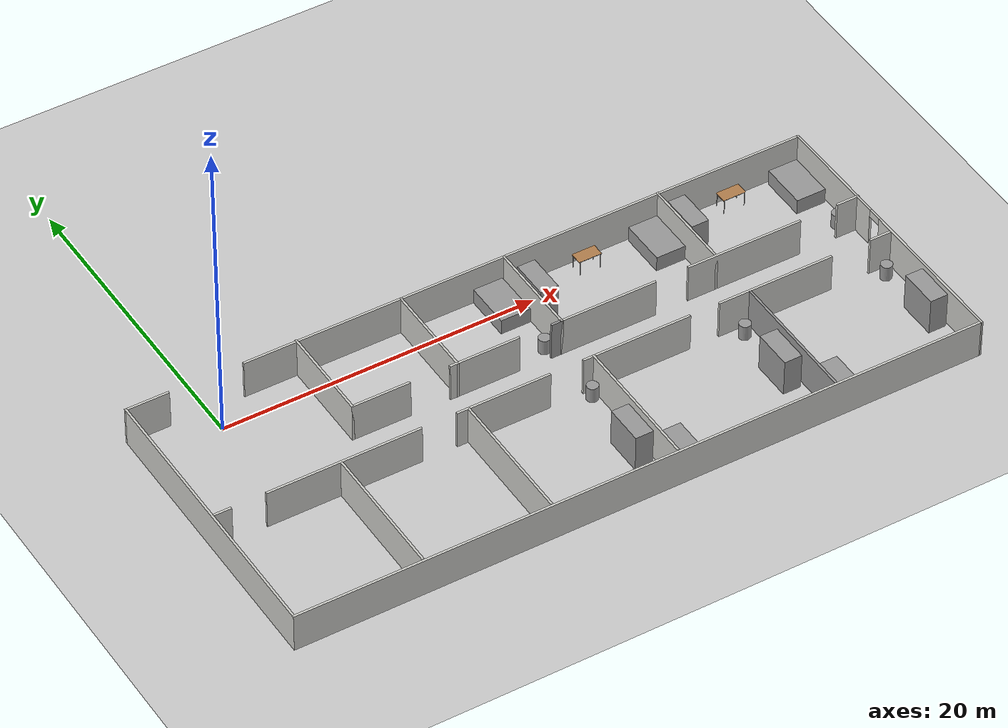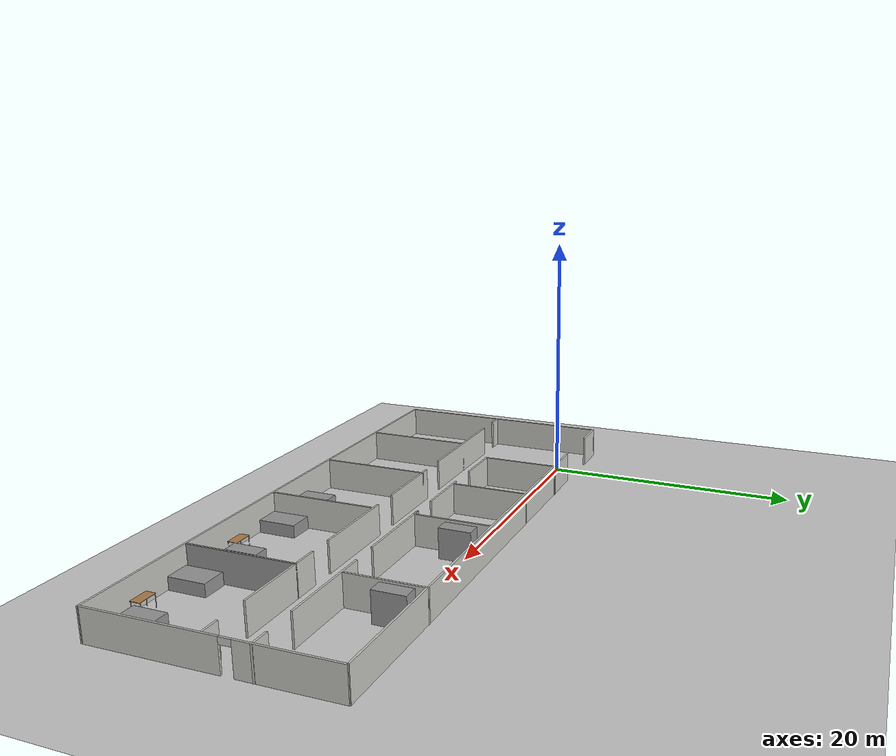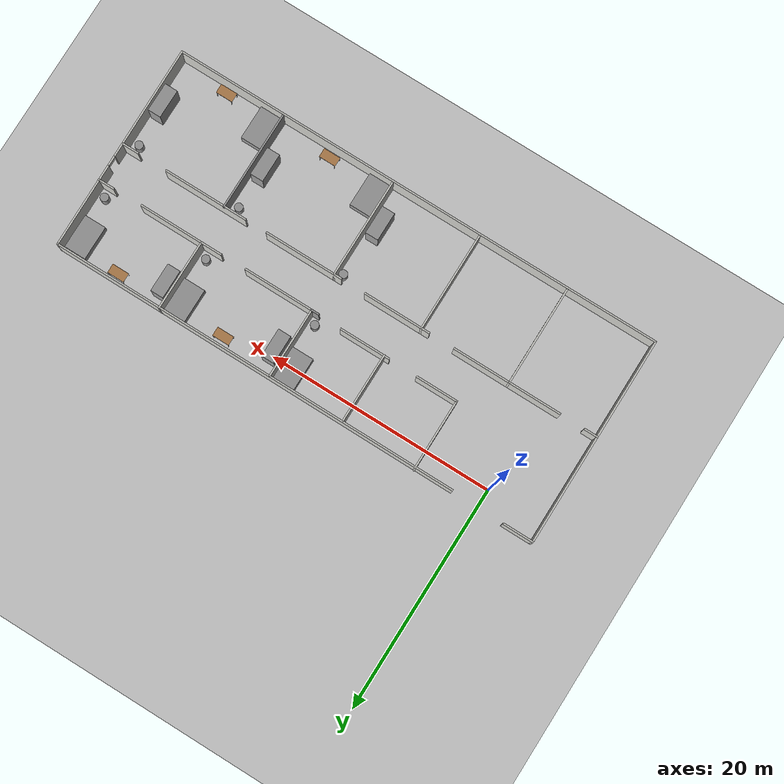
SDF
<sdf version="1.6">
 <world name="default">
  <model name="ground_plane">
   <static>1</static>
   <link name="link">
    <collision name="collision">
     <geometry><plane><normal>0 0 1</normal><size>100 100</size></plane></geometry>
     <surface><friction><ode><mu>100</mu><mu2>50</mu2></ode></friction></surface>
    </collision>
    <visual name="visual">
     <cast_shadows>0</cast_shadows>
     <geometry><plane><normal>0 0 1</normal><size>100 100</size></plane></geometry>
     <material>
      <script><uri>file://media/materials/scripts/gazebo.material</uri><name>Gazebo/Grey</name></script>
     </material>
    </visual>
   </link>
  </model>
  <model name="hospital_base">
   <pose>16.985 -7.39599 0 0 -0 0</pose>
   <link name="Wall_0">
    <collision name="Wall_0_Collision">
     <geometry><box><size>2.75 0.15 2.5</size></box></geometry>
     <pose>0 0 1.25 0 -0 0</pose>
    </collision>
    <visual name="Wall_0_Visual">
     <pose>0 0 1.25 0 -0 0</pose>
     <geometry><box><size>2.75 0.15 2.5</size></box></geometry>
     <material>
      <script><uri>file://media/materials/scripts/gazebo.material</uri><name>Gazebo/CeilingTiled</name></script>
      <ambient>1 1 1 1</ambient>
     </material>
     <meta><layer>0</layer></meta>
    </visual>
    <pose>-20.6253 9.1753 0 0 -0 0</pose>
   </link>
   <link name="Wall_10">
    <collision name="Wall_10_Collision">
     <geometry><box><size>3.75 0.15 2.5</size></box></geometry>
     <pose>0 0 1.25 0 -0 0</pose>
    </collision>
    <visual name="Wall_10_Visual">
     <pose>0 0 1.25 0 -0 0</pose>
     <geometry><box><size>3.75 0.15 2.5</size></box></geometry>
     <material>
      <script><uri>file://media/materials/scripts/gazebo.material</uri><name>Gazebo/CeilingTiled</name></script>
      <ambient>1 1 1 1</ambient>
     </material>
     <meta><layer>0</layer></meta>
    </visual>
    <pose>-9.4395 3.0224 0 0 -0 0</pose>
   </link>
   <link name="Wall_12">
    <collision name="Wall_12_Collision">
     <geometry><box><size>4.5 0.15 2.5</size></box></geometry>
     <pose>0 0 1.25 0 -0 0</pose>
    </collision>
    <visual name="Wall_12_Visual">
     <pose>0 0 1.25 0 -0 0</pose>
     <geometry><box><size>4.5 0.15 2.5</size></box></geometry>
     <material>
      <script><uri>file://media/materials/scripts/gazebo.material</uri><name>Gazebo/CeilingTiled</name></script>
      <ambient>1 1 1 1</ambient>
     </material>
     <meta><layer>0</layer></meta>
    </visual>
    <pose>-2.8223 2.986 0 0 -0 0</pose>
   </link>
   <link name="Wall_14">
    <collision name="Wall_14_Collision">
     <geometry><box><size>6.25 0.15 2.5</size></box></geometry>
     <pose>0 0 1.25 0 -0 0</pose>
    </collision>
    <visual name="Wall_14_Visual">
     <pose>0 0 1.25 0 -0 0</pose>
     <geometry><box><size>6.25 0.15 2.5</size></box></geometry>
     <material>
      <script><uri>file://media/materials/scripts/gazebo.material</uri><name>Gazebo/CeilingTiled</name></script>
      <ambient>1 1 1 1</ambient>
     </material>
     <meta><layer>0</layer></meta>
    </visual>
    <pose>-4.5741 6.0195 0 0 -0 -1.5708</pose>
   </link>
   <link name="Wall_16">
    <collision name="Wall_16_Collision">
     <geometry><box><size>0.75 0.15 2.5</size></box></geometry>
     <pose>0 0 1.25 0 -0 0</pose>
    </collision>
    <visual name="Wall_16_Visual">
     <pose>0 0 1.25 0 -0 0</pose>
     <geometry><box><size>0.75 0.15 2.5</size></box></geometry>
     <material>
      <script><uri>file://media/materials/scripts/gazebo.material</uri><name>Gazebo/Grey</name></script>
      <ambient>1 1 1 1</ambient>
     </material>
     <meta><layer>0</layer></meta>
    </visual>
    <pose>1.8094 2.9331 0 0 -0 0</pose>
   </link>
   <link name="Wall_17">
    <collision name="Wall_17_Collision">
     <geometry><box><size>6.25 0.15 2.5</size></box></geometry>
     <pose>0 0 1.25 0 -0 0</pose>
    </collision>
    <visual name="Wall_17_Visual">
     <pose>0 0 1.25 0 -0 0</pose>
     <geometry><box><size>6.25 0.15 2.5</size></box></geometry>
     <material>
      <script><uri>file://media/materials/scripts/gazebo.material</uri><name>Gazebo/CeilingTiled</name></script>
      <ambient>1 1 1 1</ambient>
     </material>
     <meta><layer>0</layer></meta>
    </visual>
    <pose>2.1094 5.9831 0 0 -0 1.5708</pose>
   </link>
   <link name="Wall_19">
    <collision name="Wall_19_Collision">
     <geometry><box><size>6.25 0.15 2.5</size></box></geometry>
     <pose>0 0 1.25 0 -0 0</pose>
    </collision>
    <visual name="Wall_19_Visual">
     <pose>0 0 1.25 0 -0 0</pose>
     <geometry><box><size>6.25 0.15 2.5</size></box></geometry>
     <material>
      <script><uri>file://media/materials/scripts/gazebo.material</uri><name>Gazebo/CeilingTiled</name></script>
      <ambient>1 1 1 1</ambient>
     </material>
     <meta><layer>0</layer></meta>
    </visual>
    <pose>5.1594 2.9331 0 0 -0 0</pose>
   </link>
   <link name="Wall_2">
    <collision name="Wall_2_Collision">
     <geometry><box><size>36.5 0.15 2.5</size></box></geometry>
     <pose>0 0 1.25 0 -0 0</pose>
    </collision>
    <visual name="Wall_2_Visual">
     <pose>0 0 1.25 0 -0 0</pose>
     <geometry><box><size>36.5 0.15 2.5</size></box></geometry>
     <material>
      <script><uri>file://media/materials/scripts/gazebo.material</uri><name>Gazebo/CeilingTiled</name></script>
      <ambient>1 1 1 1</ambient>
     </material>
     <meta><layer>0</layer></meta>
    </visual>
    <pose>3.6028 9.0695 0 0 -0 0</pose>
   </link>
   <link name="Wall_23">
    <collision name="Wall_23_Collision">
     <geometry><box><size>7.5 0.15 2.5</size></box></geometry>
     <pose>0 0 1.25 0 -0 0</pose>
    </collision>
    <visual name="Wall_23_Visual">
     <pose>0 0 1.25 0 -0 0</pose>
     <geometry><box><size>7.5 0.15 2.5</size></box></geometry>
     <material>
      <script><uri>file://media/materials/scripts/gazebo.material</uri><name>Gazebo/CeilingTiled</name></script>
      <ambient>1 1 1 1</ambient>
     </material>
     <meta><layer>0</layer></meta>
    </visual>
    <pose>14.1774 2.986 0 0 -0 0</pose>
   </link>
   <link name="Wall_25">
    <collision name="Wall_25_Collision">
     <geometry><box><size>1.5 0.15 2.5</size></box></geometry>
     <pose>0 0 1.25 0 -0 0</pose>
    </collision>
    <visual name="Wall_25_Visual">
     <pose>0 0 1.25 0 -0 0</pose>
     <geometry><box><size>1.5 0.15 2.5</size></box></geometry>
     <material>
      <script><uri>file://media/materials/scripts/gazebo.material</uri><name>Gazebo/CeilingTiled</name></script>
      <ambient>1 1 1 1</ambient>
     </material>
     <meta><layer>0</layer></meta>
    </visual>
    <pose>21.1755 3.0389 0 0 -0 0</pose>
   </link>
   <link name="Wall_27">
    <collision name="Wall_27_Collision">
     <geometry><box><size>6.25 0.15 2.5</size></box></geometry>
     <pose>0 0 1.25 0 -0 0</pose>
    </collision>
    <visual name="Wall_27_Visual">
     <pose>0 0 1.25 0 -0 0</pose>
     <geometry><box><size>6.25 0.15 2.5</size></box></geometry>
     <material>
      <script><uri>file://media/materials/scripts/gazebo.material</uri><name>Gazebo/CeilingTiled</name></script>
      <ambient>1 1 1 1</ambient>
     </material>
     <meta><layer>0</layer></meta>
    </visual>
    <pose>12.301 6.036 0 0 -0 1.5708</pose>
   </link>
   <link name="Wall_29">
    <collision name="Wall_29_Collision">
     <geometry><box><size>1.25 0.15 2.5</size></box></geometry>
     <pose>0 0 1.25 0 -0 0</pose>
    </collision>
    <visual name="Wall_29_Visual">
     <pose>0 0 1.25 0 -0 0</pose>
     <geometry><box><size>1.25 0.15 2.5</size></box></geometry>
     <material>
      <script><uri>file://media/materials/scripts/gazebo.material</uri><name>Gazebo/CeilingTiled</name></script>
      <ambient>1 1 1 1</ambient>
     </material>
     <meta><layer>0</layer></meta>
    </visual>
    <pose>-21.3753 -0.3996 0 0 -0 0</pose>
   </link>
   <link name="Wall_31">
    <collision name="Wall_31_Collision">
     <geometry><box><size>9.75 0.15 2.5</size></box></geometry>
     <pose>0 0 1.25 0 -0 0</pose>
    </collision>
    <visual name="Wall_31_Visual">
     <pose>0 0 1.25 0 -0 0</pose>
     <geometry><box><size>9.75 0.15 2.5</size></box></geometry>
     <material>
      <script><uri>file://media/materials/scripts/gazebo.material</uri><name>Gazebo/CeilingTiled</name></script>
      <ambient>1 1 1 1</ambient>
     </material>
     <meta><layer>0</layer></meta>
    </visual>
    <pose>-13.7397 -0.3996 0 0 -0 0</pose>
   </link>
   <link name="Wall_33">
    <collision name="Wall_33_Collision">
     <geometry><box><size>6 0.15 2.5</size></box></geometry>
     <pose>0 0 1.25 0 -0 0</pose>
    </collision>
    <visual name="Wall_33_Visual">
     <pose>0 0 1.25 0 -0 0</pose>
     <geometry><box><size>6 0.15 2.5</size></box></geometry>
     <material>
      <script><uri>file://media/materials/scripts/gazebo.material</uri><name>Gazebo/CeilingTiled</name></script>
      <ambient>1 1 1 1</ambient>
     </material>
     <meta><layer>0</layer></meta>
    </visual>
    <pose>-3.6593 -0.3996 0 0 -0 0</pose>
   </link>
   <link name="Wall_35">
    <collision name="Wall_35_Collision">
     <geometry><box><size>7 0.15 2.5</size></box></geometry>
     <pose>0 0 1.25 0 -0 0</pose>
    </collision>
    <visual name="Wall_35_Visual">
     <pose>0 0 1.25 0 -0 0</pose>
     <geometry><box><size>7 0.15 2.5</size></box></geometry>
     <material>
      <script><uri>file://media/materials/scripts/gazebo.material</uri><name>Gazebo/CeilingTiled</name></script>
      <ambient>1 1 1 1</ambient>
     </material>
     <meta><layer>0</layer></meta>
    </visual>
    <pose>4.9344 -0.3996 0 0 -0 0</pose>
   </link>
   <link name="Wall_37">
    <collision name="Wall_37_Collision">
     <geometry><box><size>7.5 0.15 2.5</size></box></geometry>
     <pose>0 0 1.25 0 -0 0</pose>
    </collision>
    <visual name="Wall_37_Visual">
     <pose>0 0 1.25 0 -0 0</pose>
     <geometry><box><size>7.5 0.15 2.5</size></box></geometry>
     <material>
      <script><uri>file://media/materials/scripts/gazebo.material</uri><name>Gazebo/CeilingTiled</name></script>
      <ambient>1 1 1 1</ambient>
     </material>
     <meta><layer>0</layer></meta>
    </visual>
    <pose>14.0716 -0.3996 0 0 -0 0</pose>
   </link>
   <link name="Wall_39">
    <collision name="Wall_39_Collision">
     <geometry><box><size>1.5 0.15 2.5</size></box></geometry>
     <pose>0 0 1.25 0 -0 0</pose>
    </collision>
    <visual name="Wall_39_Visual">
     <pose>0 0 1.25 0 -0 0</pose>
     <geometry><box><size>1.5 0.15 2.5</size></box></geometry>
     <material>
      <script><uri>file://media/materials/scripts/gazebo.material</uri><name>Gazebo/CeilingTiled</name></script>
      <ambient>1 1 1 1</ambient>
     </material>
     <meta><layer>0</layer></meta>
    </visual>
    <pose>21.1226 -0.3996 0 0 -0 0</pose>
   </link>
   <link name="Wall_41">
    <collision name="Wall_41_Collision">
     <geometry><box><size>8.75 0.15 2.5</size></box></geometry>
     <pose>0 0 1.25 0 -0 0</pose>
    </collision>
    <visual name="Wall_41_Visual">
     <pose>0 0 1.25 0 -0 0</pose>
     <geometry><box><size>8.75 0.15 2.5</size></box></geometry>
     <material>
      <script><uri>file://media/materials/scripts/gazebo.material</uri><name>Gazebo/Grey</name></script>
      <ambient>1 1 1 1</ambient>
     </material>
     <meta><layer>0</layer></meta>
    </visual>
    <pose>12.3539 -4.6996 0 0 -0 -1.5708</pose>
   </link>
   <link name="Wall_43">
    <collision name="Wall_43_Collision">
     <geometry><box><size>8.75 0.15 2.5</size></box></geometry>
     <pose>0 0 1.25 0 -0 0</pose>
    </collision>
    <visual name="Wall_43_Visual">
     <pose>0 0 1.25 0 -0 0</pose>
     <geometry><box><size>8.75 0.15 2.5</size></box></geometry>
     <material>
      <script><uri>file://media/materials/scripts/gazebo.material</uri><name>Gazebo/CeilingTiled</name></script>
      <ambient>1 1 1 1</ambient>
     </material>
     <meta><layer>0</layer></meta>
    </visual>
    <pose>2.1442 -4.6996 0 0 -0 -1.5708</pose>
   </link>
   <link name="Wall_45">
    <collision name="Wall_45_Collision">
     <geometry><box><size>8.75 0.15 2.5</size></box></geometry>
     <pose>0 0 1.25 0 -0 0</pose>
    </collision>
    <visual name="Wall_45_Visual">
     <pose>0 0 1.25 0 -0 0</pose>
     <geometry><box><size>8.75 0.15 2.5</size></box></geometry>
     <material>
      <script><uri>file://media/materials/scripts/gazebo.material</uri><name>Gazebo/CeilingTiled</name></script>
      <ambient>1 1 1 1</ambient>
     </material>
     <meta><layer>0</layer></meta>
    </visual>
    <pose>-5.8966 -4.6996 0 0 -0 -1.5708</pose>
   </link>
   <link name="Wall_47">
    <collision name="Wall_47_Collision">
     <geometry><box><size>8.75 0.15 2.5</size></box></geometry>
     <pose>0 0 1.25 0 -0 0</pose>
    </collision>
    <visual name="Wall_47_Visual">
     <pose>0 0 1.25 0 -0 0</pose>
     <geometry><box><size>8.75 0.15 2.5</size></box></geometry>
     <material>
      <script><uri>file://media/materials/scripts/gazebo.material</uri><name>Gazebo/CeilingTiled</name></script>
      <ambient>1 1 1 1</ambient>
     </material>
     <meta><layer>0</layer></meta>
    </visual>
    <pose>-13.9374 -4.6996 0 0 -0 -1.5708</pose>
   </link>
   <link name="Wall_5">
    <collision name="Wall_5_Collision">
     <geometry><box><size>18.5 0.15 2.5</size></box></geometry>
     <pose>0 0 1.25 0 -0 0</pose>
    </collision>
    <visual name="Wall_5_Visual">
     <pose>0 0 1.25 0 -0 0</pose>
     <geometry><box><size>18.5 0.15 2.5</size></box></geometry>
     <material>
      <script><uri>file://media/materials/scripts/gazebo.material</uri><name>Gazebo/CeilingTiled</name></script>
      <ambient>1 1 1 1</ambient>
     </material>
     <meta><layer>0</layer></meta>
    </visual>
    <pose>-21.9253 0.0003 0 0 -0 -1.5708</pose>
   </link>
   <link name="Wall_6">
    <collision name="Wall_6_Collision">
     <geometry><box><size>44 0.15 2.5</size></box></geometry>
     <pose>0 0 1.25 0 -0 0</pose>
    </collision>
    <visual name="Wall_6_Visual">
     <pose>0 0 1.25 0 -0 0</pose>
     <geometry><box><size>44 0.15 2.5</size></box></geometry>
     <material>
      <script><uri>file://media/materials/scripts/gazebo.material</uri><name>Gazebo/CeilingTiled</name></script>
      <ambient>1 1 1 1</ambient>
     </material>
     <meta><layer>0</layer></meta>
    </visual>
    <pose>-0.0003 -9.1747 0 0 -0 0</pose>
   </link>
   <link name="Wall_7">
    <pose>21.8513 -0.0526 0 0 -0 1.57885</pose>
    <visual name="Wall_7_Visual_0">
     <pose>-4.17652 0 1.25 0 -0 0</pose>
     <geometry><box><size>10.0418 0.15 2.5</size></box></geometry>
     <material>
      <script><uri>file://media/materials/scripts/gazebo.material</uri><name>Gazebo/CeilingTiled</name></script>
      <ambient>1 1 1 1</ambient>
     </material>
     <meta><layer>0</layer></meta>
    </visual>
    <collision name="Wall_7_Collision_0">
     <geometry><box><size>10.0418 0.15 2.5</size></box></geometry>
     <pose>-4.17652 0 1.25 0 -0 0</pose>
    </collision>
    <visual name="Wall_7_Visual_1">
     <pose>5.47088 0 1.25 0 -0 0</pose>
     <geometry><box><size>7.45303 0.15 2.5</size></box></geometry>
     <material>
      <script><uri>file://media/materials/scripts/gazebo.material</uri><name>Gazebo/CeilingTiled</name></script>
      <ambient>1 1 1 1</ambient>
     </material>
     <meta><layer>0</layer></meta>
    </visual>
    <collision name="Wall_7_Collision_1">
     <geometry><box><size>7.45303 0.15 2.5</size></box></geometry>
     <pose>5.47088 0 1.25 0 -0 0</pose>
    </collision>
    <visual name="Wall_7_Visual_2">
     <pose>1.29436 0 2.25 0 -0 0</pose>
     <geometry><box><size>0.9 0.15 0.5</size></box></geometry>
     <material>
      <script><uri>file://media/materials/scripts/gazebo.material</uri><name>Gazebo/CeilingTiled</name></script>
      <ambient>1 1 1 1</ambient>
     </material>
     <meta><layer>0</layer></meta>
    </visual>
    <collision name="Wall_7_Collision_2">
     <geometry><box><size>0.9 0.15 0.5</size></box></geometry>
     <pose>1.29436 0 2.25 0 -0 0</pose>
    </collision>
   </link>
   <link name="Wall_9">
    <collision name="Wall_9_Collision">
     <geometry><box><size>6.25 0.15 2.5</size></box></geometry>
     <pose>0 0 1.25 0 -0 0</pose>
    </collision>
    <visual name="Wall_9_Visual">
     <pose>0 0 1.25 0 -0 0</pose>
     <geometry><box><size>6.25 0.15 2.5</size></box></geometry>
     <material>
      <script><uri>file://media/materials/scripts/gazebo.material</uri><name>Gazebo/CeilingTiled</name></script>
      <ambient>1 1 1 1</ambient>
     </material>
     <meta><layer>0</layer></meta>
    </visual>
    <pose>-11.2395 6.0724 0 0 -0 -1.5708</pose>
   </link>
   <static>1</static>
  </model>
  <model name="unit_box_1_clone_1">
   <pose>20.2632 -14.9393 0.499995 0 -5e-06 4.8e-05</pose>
   <link name="link">
    <inertial>
     <mass>1</mass>
     <inertia>
      <ixx>0.166667</ixx>
      <ixy>0</ixy>
      <ixz>0</ixz>
      <iyy>0.166667</iyy>
      <iyz>0</iyz>
      <izz>0.166667</izz>
     </inertia>
    </inertial>
    <collision name="collision"><geometry><box><size>1.90543 2.99439 1</size></box></geometry></collision>
    <visual name="visual">
     <geometry><box><size>1.90543 2.99439 1</size></box></geometry>
     <material>
      <script><name>Gazebo/Grey</name><uri>file://media/materials/scripts/gazebo.material</uri></script>
     </material>
    </visual>
   </link>
  </model>
  <model name="unit_box_1_clone_2">
   <pose>30.517 -14.9512 0.499995 0 -5e-06 4.9e-05</pose>
   <link name="link">
    <inertial>
     <mass>1</mass>
     <inertia>
      <ixx>0.166667</ixx>
      <ixy>0</ixy>
      <ixz>0</ixz>
      <iyy>0.166667</iyy>
      <iyz>0</iyz>
      <izz>0.166667</izz>
     </inertia>
    </inertial>
    <collision name="collision"><geometry><box><size>1.90543 2.99439 1</size></box></geometry></collision>
    <visual name="visual">
     <geometry><box><size>1.90543 2.99439 1</size></box></geometry>
     <material>
      <script><name>Gazebo/Grey</name><uri>file://media/materials/scripts/gazebo.material</uri></script>
     </material>
    </visual>
   </link>
  </model>
  <model name="unit_box_1_clone_3">
   <pose>37.5966 -0.067872 0.499995 0 5e-06 5.5e-05</pose>
   <link name="link">
    <inertial>
     <mass>1</mass>
     <inertia>
      <ixx>0.166667</ixx>
      <ixy>0</ixy>
      <ixz>0</ixz>
      <iyy>0.166667</iyy>
      <iyz>0</iyz>
      <izz>0.166667</izz>
     </inertia>
    </inertial>
    <collision name="collision"><geometry><box><size>1.90543 2.99439 1</size></box></geometry></collision>
    <visual name="visual">
     <geometry><box><size>1.90543 2.99439 1</size></box></geometry>
     <material>
      <script><name>Gazebo/Grey</name><uri>file://media/materials/scripts/gazebo.material</uri></script>
     </material>
    </visual>
   </link>
  </model>
  <model name="unit_box_1_clone_4">
   <pose>28.1968 0.009161 0.499995 0 5e-06 -6.6e-05</pose>
   <link name="link">
    <inertial>
     <mass>1</mass>
     <inertia>
      <ixx>0.166667</ixx>
      <ixy>0</ixy>
      <ixz>0</ixz>
      <iyy>0.166667</iyy>
      <iyz>0</iyz>
      <izz>0.166667</izz>
     </inertia>
    </inertial>
    <collision name="collision"><geometry><box><size>1.90543 2.99439 1</size></box></geometry></collision>
    <visual name="visual">
     <geometry><box><size>1.90543 2.99439 1</size></box></geometry>
     <material>
      <script><name>Gazebo/Grey</name><uri>file://media/materials/scripts/gazebo.material</uri></script>
     </material>
    </visual>
   </link>
  </model>
  <model name="unit_box_1_clone_6">
   <pose>18.0101 0.101182 0.499995 0 -5e-06 0.000101</pose>
   <link name="link">
    <inertial>
     <mass>1</mass>
     <inertia>
      <ixx>0.166667</ixx>
      <ixy>0</ixy>
      <ixz>0</ixz>
      <iyy>0.166667</iyy>
      <iyz>0</iyz>
      <izz>0.166667</izz>
     </inertia>
    </inertial>
    <collision name="collision"><geometry><box><size>1.90543 2.99439 1</size></box></geometry></collision>
    <visual name="visual">
     <geometry><box><size>1.90543 2.99439 1</size></box></geometry>
     <material>
      <script><name>Gazebo/Grey</name><uri>file://media/materials/scripts/gazebo.material</uri></script>
     </material>
    </visual>
   </link>
  </model>
  <model name="unit_cylinder_clone_0">
   <pose>18.676 -8.4168 0.499997 0 -0 0</pose>
   <link name="link">
    <inertial>
     <mass>1</mass>
     <inertia><ixx>0.145833</ixx><ixy>0</ixy><ixz>0</ixz><iyy>0.145833</iyy><iyz>0</iyz><izz>0.125</izz></inertia>
    </inertial>
    <collision name="collision">
     <geometry><cylinder><radius>0.361483</radius><length>1</length></cylinder></geometry>
    </collision>
    <visual name="visual">
     <geometry><cylinder><radius>0.361483</radius><length>1</length></cylinder></geometry>
     <material>
      <script><name>Gazebo/Grey</name><uri>file://media/materials/scripts/gazebo.material</uri></script>
     </material>
    </visual>
   </link>
  </model>
  <model name="unit_cylinder_clone_1">
   <pose>28.5817 -8.56852 0.499993 -0 -0 -0</pose>
   <link name="link">
    <inertial>
     <mass>1</mass>
     <inertia><ixx>0.145833</ixx><ixy>0</ixy><ixz>0</ixz><iyy>0.145833</iyy><iyz>0</iyz><izz>0.125</izz></inertia>
    </inertial>
    <collision name="collision">
     <geometry><cylinder><radius>0.361483</radius><length>1</length></cylinder></geometry>
    </collision>
    <visual name="visual">
     <geometry><cylinder><radius>0.361483</radius><length>1</length></cylinder></geometry>
     <material>
      <script><name>Gazebo/Grey</name><uri>file://media/materials/scripts/gazebo.material</uri></script>
     </material>
    </visual>
   </link>
  </model>
  <model name="unit_cylinder_clone_2">
   <pose>38.0307 -8.60052 0.499997 0 -0 0</pose>
   <link name="link">
    <inertial>
     <mass>1</mass>
     <inertia><ixx>0.145833</ixx><ixy>0</ixy><ixz>0</ixz><iyy>0.145833</iyy><iyz>0</iyz><izz>0.125</izz></inertia>
    </inertial>
    <collision name="collision">
     <geometry><cylinder><radius>0.361483</radius><length>1</length></cylinder></geometry>
    </collision>
    <visual name="visual">
     <geometry><cylinder><radius>0.361483</radius><length>1</length></cylinder></geometry>
     <material>
      <script><name>Gazebo/Grey</name><uri>file://media/materials/scripts/gazebo.material</uri></script>
     </material>
    </visual>
   </link>
  </model>
  <model name="unit_box_2_clone_0">
   <pose>18.2486 -13.1791 1.19041 0 -0 9.3e-05</pose>
   <link name="link">
    <inertial>
     <mass>1</mass>
     <inertia>
      <ixx>0.166667</ixx>
      <ixy>0</ixy>
      <ixz>0</ixz>
      <iyy>0.166667</iyy>
      <iyz>0</iyz>
      <izz>0.166667</izz>
     </inertia>
    </inertial>
    <collision name="collision"><geometry><box><size>1.13758 2.51147 2.38082</size></box></geometry></collision>
    <visual name="visual">
     <geometry><box><size>1.13758 2.51147 2.38082</size></box></geometry>
     <material>
      <script><name>Gazebo/Grey</name><uri>file://media/materials/scripts/gazebo.material</uri></script>
     </material>
    </visual>
   </link>
  </model>
  <model name="unit_box_2_clone_1">
   <pose>28.4321 -12.3596 1.19041 0 -0 9.3e-05</pose>
   <link name="link">
    <inertial>
     <mass>1</mass>
     <inertia>
      <ixx>0.166667</ixx>
      <ixy>0</ixy>
      <ixz>0</ixz>
      <iyy>0.166667</iyy>
      <iyz>0</iyz>
      <izz>0.166667</izz>
     </inertia>
    </inertial>
    <collision name="collision"><geometry><box><size>1.13758 2.51147 2.38082</size></box></geometry></collision>
    <visual name="visual">
     <geometry><box><size>1.13758 2.51147 2.38082</size></box></geometry>
     <material>
      <script><name>Gazebo/Grey</name><uri>file://media/materials/scripts/gazebo.material</uri></script>
     </material>
    </visual>
   </link>
  </model>
  <model name="unit_box_2_clone_2">
   <pose>38.0757 -12.4293 1.19041 0 -0 9.3e-05</pose>
   <link name="link">
    <inertial>
     <mass>1</mass>
     <inertia>
      <ixx>0.166667</ixx>
      <ixy>0</ixy>
      <ixz>0</ixz>
      <iyy>0.166667</iyy>
      <iyz>0</iyz>
      <izz>0.166667</izz>
     </inertia>
    </inertial>
    <collision name="collision"><geometry><box><size>1.13758 2.51147 2.38082</size></box></geometry></collision>
    <visual name="visual">
     <geometry><box><size>1.13758 2.51147 2.38082</size></box></geometry>
     <material>
      <script><name>Gazebo/Grey</name><uri>file://media/materials/scripts/gazebo.material</uri></script>
     </material>
    </visual>
   </link>
  </model>
  <model name="unit_box_2_clone_3">
   <pose>30.0365 -0.348097 1.19041 0 -0 9.3e-05</pose>
   <link name="link">
    <inertial>
     <mass>1</mass>
     <inertia>
      <ixx>0.166667</ixx>
      <ixy>0</ixy>
      <ixz>0</ixz>
      <iyy>0.166667</iyy>
      <iyz>0</iyz>
      <izz>0.166667</izz>
     </inertia>
    </inertial>
    <collision name="collision"><geometry><box><size>1.13758 2.51147 2.38082</size></box></geometry></collision>
    <visual name="visual">
     <geometry><box><size>1.13758 2.51147 2.38082</size></box></geometry>
     <material>
      <script><name>Gazebo/Grey</name><uri>file://media/materials/scripts/gazebo.material</uri></script>
     </material>
    </visual>
   </link>
  </model>
  <model name="unit_box_2_clone_4">
   <pose>19.9326 -0.590282 1.19041 0 -0 9.3e-05</pose>
   <link name="link">
    <inertial>
     <mass>1</mass>
     <inertia>
      <ixx>0.166667</ixx>
      <ixy>0</ixy>
      <ixz>0</ixz>
      <iyy>0.166667</iyy>
      <iyz>0</iyz>
      <izz>0.166667</izz>
     </inertia>
    </inertial>
    <collision name="collision"><geometry><box><size>1.13758 2.51147 2.38082</size></box></geometry></collision>
    <visual name="visual">
     <geometry><box><size>1.13758 2.51147 2.38082</size></box></geometry>
     <material>
      <script><name>Gazebo/Grey</name><uri>file://media/materials/scripts/gazebo.material</uri></script>
     </material>
    </visual>
   </link>
  </model>
  <model name="table_clone_1">
   <static>1</static>
   <link name="link">
    <collision name="surface">
     <pose>0 0 1 0 -0 0</pose>
     <geometry><box><size>1.5 0.8 0.03</size></box></geometry>
     <surface><friction><ode><mu>0.6</mu><mu2>0.6</mu2></ode></friction></surface>
    </collision>
    <visual name="visual1">
     <pose>0 0 1 0 -0 0</pose>
     <geometry><box><size>1.5 0.8 0.03</size></box></geometry>
     <material>
      <script><uri>file://media/materials/scripts/gazebo.material</uri><name>Gazebo/Wood</name></script>
     </material>
    </visual>
    <collision name="front_left_leg">
     <pose>0.68 0.38 0.5 0 -0 0</pose>
     <geometry><cylinder><radius>0.02</radius><length>1</length></cylinder></geometry>
    </collision>
    <visual name="front_left_leg">
     <pose>0.68 0.38 0.5 0 -0 0</pose>
     <geometry><cylinder><radius>0.02</radius><length>1</length></cylinder></geometry>
     <material>
      <script><uri>file://media/materials/scripts/gazebo.material</uri><name>Gazebo/Grey</name></script>
     </material>
    </visual>
    <collision name="front_right_leg">
     <pose>0.68 -0.38 0.5 0 -0 0</pose>
     <geometry><cylinder><radius>0.02</radius><length>1</length></cylinder></geometry>
    </collision>
    <visual name="front_right_leg">
     <pose>0.68 -0.38 0.5 0 -0 0</pose>
     <geometry><cylinder><radius>0.02</radius><length>1</length></cylinder></geometry>
     <material>
      <script><uri>file://media/materials/scripts/gazebo.material</uri><name>Gazebo/Grey</name></script>
     </material>
    </visual>
    <collision name="back_right_leg">
     <pose>-0.68 -0.38 0.5 0 -0 0</pose>
     <geometry><cylinder><radius>0.02</radius><length>1</length></cylinder></geometry>
    </collision>
    <visual name="back_right_leg">
     <pose>-0.68 -0.38 0.5 0 -0 0</pose>
     <geometry><cylinder><radius>0.02</radius><length>1</length></cylinder></geometry>
     <material>
      <script><uri>file://media/materials/scripts/gazebo.material</uri><name>Gazebo/Grey</name></script>
     </material>
    </visual>
    <collision name="back_left_leg">
     <pose>-0.68 0.38 0.5 0 -0 0</pose>
     <geometry><cylinder><radius>0.02</radius><length>1</length></cylinder></geometry>
    </collision>
    <visual name="back_left_leg">
     <pose>-0.68 0.38 0.5 0 -0 0</pose>
     <geometry><cylinder><radius>0.02</radius><length>1</length></cylinder></geometry>
     <material>
      <script><uri>file://media/materials/scripts/gazebo.material</uri><name>Gazebo/Grey</name></script>
     </material>
    </visual>
   </link>
   <pose>24.614 -15.8409 0 0 -0 0</pose>
  </model>
  <model name="table_clone_2">
   <static>1</static>
   <link name="link">
    <collision name="surface">
     <pose>0 0 1 0 -0 0</pose>
     <geometry><box><size>1.5 0.8 0.03</size></box></geometry>
     <surface><friction><ode><mu>0.6</mu><mu2>0.6</mu2></ode></friction></surface>
    </collision>
    <visual name="visual1">
     <pose>0 0 1 0 -0 0</pose>
     <geometry><box><size>1.5 0.8 0.03</size></box></geometry>
     <material>
      <script><uri>file://media/materials/scripts/gazebo.material</uri><name>Gazebo/Wood</name></script>
     </material>
    </visual>
    <collision name="front_left_leg">
     <pose>0.68 0.38 0.5 0 -0 0</pose>
     <geometry><cylinder><radius>0.02</radius><length>1</length></cylinder></geometry>
    </collision>
    <visual name="front_left_leg">
     <pose>0.68 0.38 0.5 0 -0 0</pose>
     <geometry><cylinder><radius>0.02</radius><length>1</length></cylinder></geometry>
     <material>
      <script><uri>file://media/materials/scripts/gazebo.material</uri><name>Gazebo/Grey</name></script>
     </material>
    </visual>
    <collision name="front_right_leg">
     <pose>0.68 -0.38 0.5 0 -0 0</pose>
     <geometry><cylinder><radius>0.02</radius><length>1</length></cylinder></geometry>
    </collision>
    <visual name="front_right_leg">
     <pose>0.68 -0.38 0.5 0 -0 0</pose>
     <geometry><cylinder><radius>0.02</radius><length>1</length></cylinder></geometry>
     <material>
      <script><uri>file://media/materials/scripts/gazebo.material</uri><name>Gazebo/Grey</name></script>
     </material>
    </visual>
    <collision name="back_right_leg">
     <pose>-0.68 -0.38 0.5 0 -0 0</pose>
     <geometry><cylinder><radius>0.02</radius><length>1</length></cylinder></geometry>
    </collision>
    <visual name="back_right_leg">
     <pose>-0.68 -0.38 0.5 0 -0 0</pose>
     <geometry><cylinder><radius>0.02</radius><length>1</length></cylinder></geometry>
     <material>
      <script><uri>file://media/materials/scripts/gazebo.material</uri><name>Gazebo/Grey</name></script>
     </material>
    </visual>
    <collision name="back_left_leg">
     <pose>-0.68 0.38 0.5 0 -0 0</pose>
     <geometry><cylinder><radius>0.02</radius><length>1</length></cylinder></geometry>
    </collision>
    <visual name="back_left_leg">
     <pose>-0.68 0.38 0.5 0 -0 0</pose>
     <geometry><cylinder><radius>0.02</radius><length>1</length></cylinder></geometry>
     <material>
      <script><uri>file://media/materials/scripts/gazebo.material</uri><name>Gazebo/Grey</name></script>
     </material>
    </visual>
   </link>
   <pose>34.3997 -15.9077 0 0 -0 0</pose>
  </model>
  <model name="table_clone_3">
   <static>1</static>
   <link name="link">
    <collision name="surface">
     <pose>0 0 1 0 -0 0</pose>
     <geometry><box><size>1.5 0.8 0.03</size></box></geometry>
     <surface><friction><ode><mu>0.6</mu><mu2>0.6</mu2></ode></friction></surface>
    </collision>
    <visual name="visual1">
     <pose>0 0 1 0 -0 0</pose>
     <geometry><box><size>1.5 0.8 0.03</size></box></geometry>
     <material>
      <script><uri>file://media/materials/scripts/gazebo.material</uri><name>Gazebo/Wood</name></script>
     </material>
    </visual>
    <collision name="front_left_leg">
     <pose>0.68 0.38 0.5 0 -0 0</pose>
     <geometry><cylinder><radius>0.02</radius><length>1</length></cylinder></geometry>
    </collision>
    <visual name="front_left_leg">
     <pose>0.68 0.38 0.5 0 -0 0</pose>
     <geometry><cylinder><radius>0.02</radius><length>1</length></cylinder></geometry>
     <material>
      <script><uri>file://media/materials/scripts/gazebo.material</uri><name>Gazebo/Grey</name></script>
     </material>
    </visual>
    <collision name="front_right_leg">
     <pose>0.68 -0.38 0.5 0 -0 0</pose>
     <geometry><cylinder><radius>0.02</radius><length>1</length></cylinder></geometry>
    </collision>
    <visual name="front_right_leg">
     <pose>0.68 -0.38 0.5 0 -0 0</pose>
     <geometry><cylinder><radius>0.02</radius><length>1</length></cylinder></geometry>
     <material>
      <script><uri>file://media/materials/scripts/gazebo.material</uri><name>Gazebo/Grey</name></script>
     </material>
    </visual>
    <collision name="back_right_leg">
     <pose>-0.68 -0.38 0.5 0 -0 0</pose>
     <geometry><cylinder><radius>0.02</radius><length>1</length></cylinder></geometry>
    </collision>
    <visual name="back_right_leg">
     <pose>-0.68 -0.38 0.5 0 -0 0</pose>
     <geometry><cylinder><radius>0.02</radius><length>1</length></cylinder></geometry>
     <material>
      <script><uri>file://media/materials/scripts/gazebo.material</uri><name>Gazebo/Grey</name></script>
     </material>
    </visual>
    <collision name="back_left_leg">
     <pose>-0.68 0.38 0.5 0 -0 0</pose>
     <geometry><cylinder><radius>0.02</radius><length>1</length></cylinder></geometry>
    </collision>
    <visual name="back_left_leg">
     <pose>-0.68 0.38 0.5 0 -0 0</pose>
     <geometry><cylinder><radius>0.02</radius><length>1</length></cylinder></geometry>
     <material>
      <script><uri>file://media/materials/scripts/gazebo.material</uri><name>Gazebo/Grey</name></script>
     </material>
    </visual>
   </link>
   <pose>33.7888 0.973782 0 0 -0 0</pose>
  </model>
  <model name="table_clone_4">
   <static>1</static>
   <link name="link">
    <collision name="surface">
     <pose>0 0 1 0 -0 0</pose>
     <geometry><box><size>1.5 0.8 0.03</size></box></geometry>
     <surface><friction><ode><mu>0.6</mu><mu2>0.6</mu2></ode></friction></surface>
    </collision>
    <visual name="visual1">
     <pose>0 0 1 0 -0 0</pose>
     <geometry><box><size>1.5 0.8 0.03</size></box></geometry>
     <material>
      <script><uri>file://media/materials/scripts/gazebo.material</uri><name>Gazebo/Wood</name></script>
     </material>
    </visual>
    <collision name="front_left_leg">
     <pose>0.68 0.38 0.5 0 -0 0</pose>
     <geometry><cylinder><radius>0.02</radius><length>1</length></cylinder></geometry>
    </collision>
    <visual name="front_left_leg">
     <pose>0.68 0.38 0.5 0 -0 0</pose>
     <geometry><cylinder><radius>0.02</radius><length>1</length></cylinder></geometry>
     <material>
      <script><uri>file://media/materials/scripts/gazebo.material</uri><name>Gazebo/Grey</name></script>
     </material>
    </visual>
    <collision name="front_right_leg">
     <pose>0.68 -0.38 0.5 0 -0 0</pose>
     <geometry><cylinder><radius>0.02</radius><length>1</length></cylinder></geometry>
    </collision>
    <visual name="front_right_leg">
     <pose>0.68 -0.38 0.5 0 -0 0</pose>
     <geometry><cylinder><radius>0.02</radius><length>1</length></cylinder></geometry>
     <material>
      <script><uri>file://media/materials/scripts/gazebo.material</uri><name>Gazebo/Grey</name></script>
     </material>
    </visual>
    <collision name="back_right_leg">
     <pose>-0.68 -0.38 0.5 0 -0 0</pose>
     <geometry><cylinder><radius>0.02</radius><length>1</length></cylinder></geometry>
    </collision>
    <visual name="back_right_leg">
     <pose>-0.68 -0.38 0.5 0 -0 0</pose>
     <geometry><cylinder><radius>0.02</radius><length>1</length></cylinder></geometry>
     <material>
      <script><uri>file://media/materials/scripts/gazebo.material</uri><name>Gazebo/Grey</name></script>
     </material>
    </visual>
    <collision name="back_left_leg">
     <pose>-0.68 0.38 0.5 0 -0 0</pose>
     <geometry><cylinder><radius>0.02</radius><length>1</length></cylinder></geometry>
    </collision>
    <visual name="back_left_leg">
     <pose>-0.68 0.38 0.5 0 -0 0</pose>
     <geometry><cylinder><radius>0.02</radius><length>1</length></cylinder></geometry>
     <material>
      <script><uri>file://media/materials/scripts/gazebo.material</uri><name>Gazebo/Grey</name></script>
     </material>
    </visual>
   </link>
   <pose>24.0405 0.813601 0 0 -0 0</pose>
  </model>
  <model name="unit_cylinder_clone_4">
   <pose>18.42 -3.77575 0.499997 1e-06 1e-06 0</pose>
   <link name="link">
    <inertial>
     <mass>1</mass>
     <inertia><ixx>0.145833</ixx><ixy>0</ixy><ixz>0</ixz><iyy>0.145833</iyy><iyz>0</iyz><izz>0.125</izz></inertia>
    </inertial>
    <collision name="collision">
     <geometry><cylinder><radius>0.361483</radius><length>1</length></cylinder></geometry>
    </collision>
    <visual name="visual">
     <geometry><cylinder><radius>0.361483</radius><length>1</length></cylinder></geometry>
     <material>
      <script><name>Gazebo/Grey</name><uri>file://media/materials/scripts/gazebo.material</uri></script>
     </material>
    </visual>
   </link>
  </model>
  <model name="unit_cylinder_clone_5">
   <pose>28.5488 -3.65659 0.499993 -1e-06 -1e-06 0</pose>
   <link name="link">
    <inertial>
     <mass>1</mass>
     <inertia><ixx>0.145833</ixx><ixy>0</ixy><ixz>0</ixz><iyy>0.145833</iyy><iyz>0</iyz><izz>0.125</izz></inertia>
    </inertial>
    <collision name="collision">
     <geometry><cylinder><radius>0.361483</radius><length>1</length></cylinder></geometry>
    </collision>
    <visual name="visual">
     <geometry><cylinder><radius>0.361483</radius><length>1</length></cylinder></geometry>
     <material>
      <script><name>Gazebo/Grey</name><uri>file://media/materials/scripts/gazebo.material</uri></script>
     </material>
    </visual>
   </link>
  </model>
  <model name="unit_cylinder_clone_6">
   <pose>38.0574 -3.57217 0.499997 1e-06 1e-06 0</pose>
   <link name="link">
    <inertial>
     <mass>1</mass>
     <inertia><ixx>0.145833</ixx><ixy>0</ixy><ixz>0</ixz><iyy>0.145833</iyy><iyz>0</iyz><izz>0.125</izz></inertia>
    </inertial>
    <collision name="collision">
     <geometry><cylinder><radius>0.361483</radius><length>1</length></cylinder></geometry>
    </collision>
    <visual name="visual">
     <geometry><cylinder><radius>0.361483</radius><length>1</length></cylinder></geometry>
     <material>
      <script><name>Gazebo/Grey</name><uri>file://media/materials/scripts/gazebo.material</uri></script>
     </material>
    </visual>
   </link>
  </model>
 </world>
</sdf>
